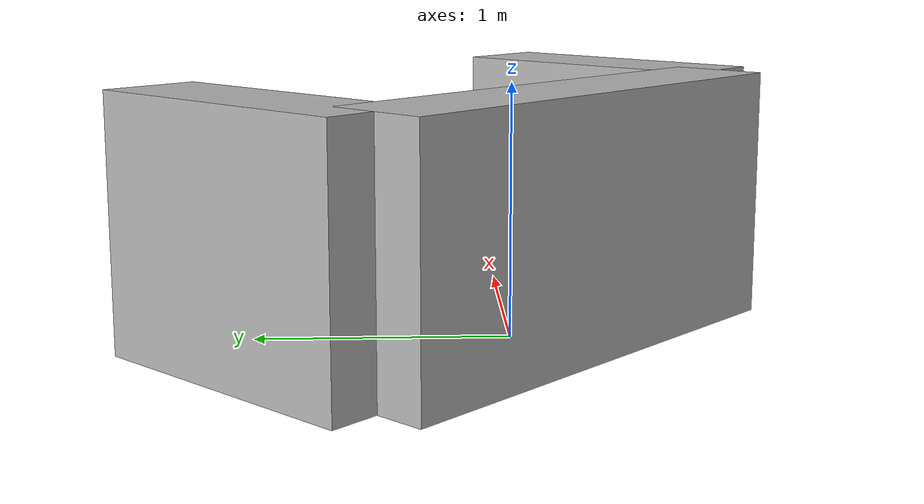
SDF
<sdf version='1.6'>
  <model name='obstacles_stage3'>
    <pose frame=''>-0.2 -0.2 0 0 0 5.5</pose>
    <link name='obstacle'>
      <!-- Define the U-shaped obstacle using three box geometries -->

      <!-- Bottom part of U -->
      <collision name='u_obstacle_bottom'>
        <pose>0 0 0.5 0 0 0</pose> <!-- Adjust pose as needed -->
        <geometry>
          <box>
            <size>2.0 0.4 1</size> <!-- Adjust size as needed -->
          </box>
        </geometry>
      </collision>
      <visual name='u_obstacle_bottom'>
        <pose>0 0 0.5 0 0 0</pose> <!-- Adjust pose as needed -->
        <geometry>
          <box>
            <size>2.0 0.4 1</size> <!-- Adjust size as needed -->
          </box>
        </geometry>
      </visual>

      <!-- Left side of U -->
      <collision name='u_obstacle_left'>
        <pose>-1.0 0.6 0.5 0 0 0</pose> <!-- Adjust pose as needed -->
        <geometry>
          <box>
            <size>0.4 1.2 1</size> <!-- Adjust size as needed -->
          </box>
        </geometry>
      </collision>
      <visual name='u_obstacle_left'>
        <pose>-1.0 0.6 0.5 0 0 0</pose> <!-- Adjust pose as needed -->
        <geometry>
          <box>
            <size>0.4 1.2 1</size> <!-- Adjust size as needed -->
          </box>
        </geometry>
      </visual>

      <!-- Right side of U -->
      <collision name='u_obstacle_right'>
        <pose>1.0 0.6 0.5 0 0 0</pose> <!-- Adjust pose as needed -->
        <geometry>
          <box>
            <size>0.4 1.2 1</size> <!-- Adjust size as needed -->
          </box>
        </geometry>
      </collision>
      <visual name='u_obstacle_right'>
        <pose>1.0 0.6 0.5 0 0 0</pose> <!-- Adjust pose as needed -->
        <geometry>
          <box>
            <size>0.4 1.2 1</size> <!-- Adjust size as needed -->
          </box>
        </geometry>
      </visual>
    </link>
    <static>1</static>
  </model>
</sdf>
